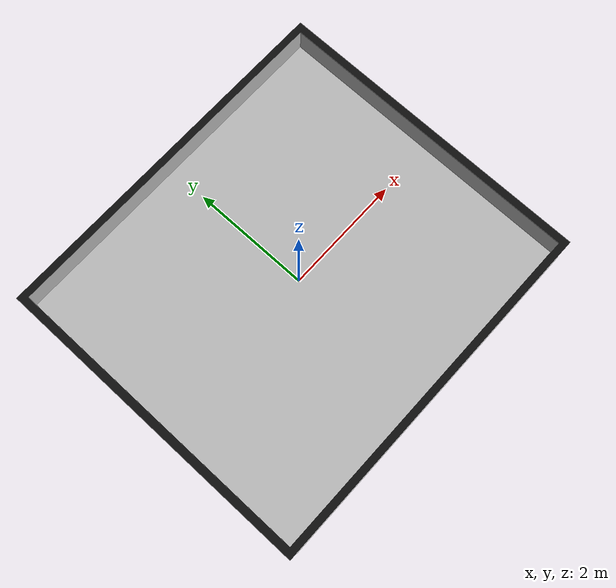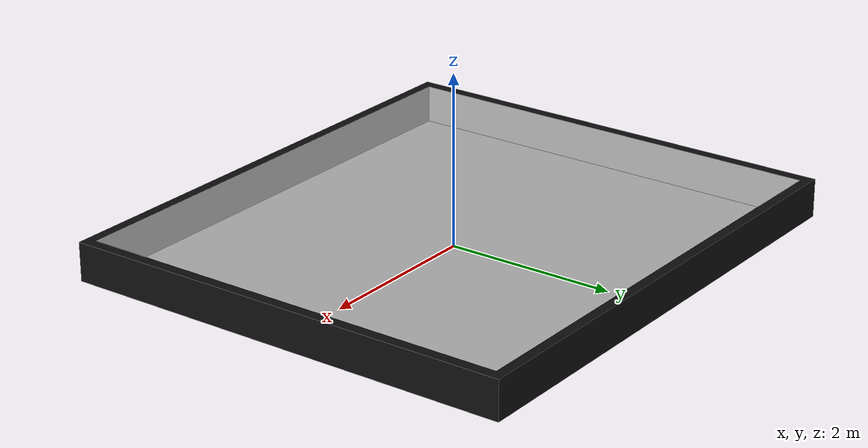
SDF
<?xml version='1.4'?>
<sdf version='1.4'>
    <model name="border_box_v1">
        <static>1</static>
        <link name="link_1">
            <visual name='visual'>
                <pose frame=''>0 0 0 0 0 0</pose>
                <geometry>
                    <mesh>
                        <uri>model://border_box_v1/meshes/border_box.dae</uri>
                        <scale>1.3 1.2 1</scale>
                    </mesh>
                </geometry>
            </visual>

            <collision name="collision_1">
                <pose frame=''>0 -2.61 0.225 0 0 0</pose>
                <geometry>
                    <box>
                        <size>5.4 0.12 0.45</size>
                    </box>
                </geometry>
            </collision>

            <collision name="collision_2">
                <pose frame=''>0 2.664 0.225 0 0 0</pose>
                <geometry>
                    <box>
                        <size>5.4 0.12 0.45</size>
                    </box>
                </geometry>
            </collision>

            <collision name="collision_3">
                <pose frame=''>-2.73 0 0.225 0 0 0</pose>
                <geometry>
                    <box>
                        <size>0.12 5.4 0.45</size>
                    </box>
                </geometry>
            </collision>

            <collision name="collision_4">
                <pose frame=''>2.664 0 0.225 0 0 0</pose>
                <geometry>
                    <box>
                        <size>0.12 5.4 0.45</size>
                    </box>
                </geometry>
            </collision>
        </link>
    </model>
</sdf>
